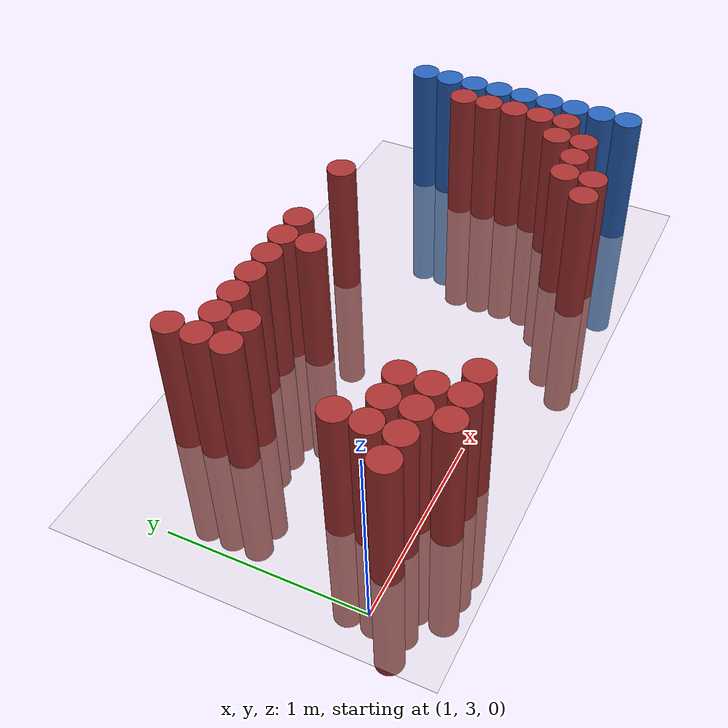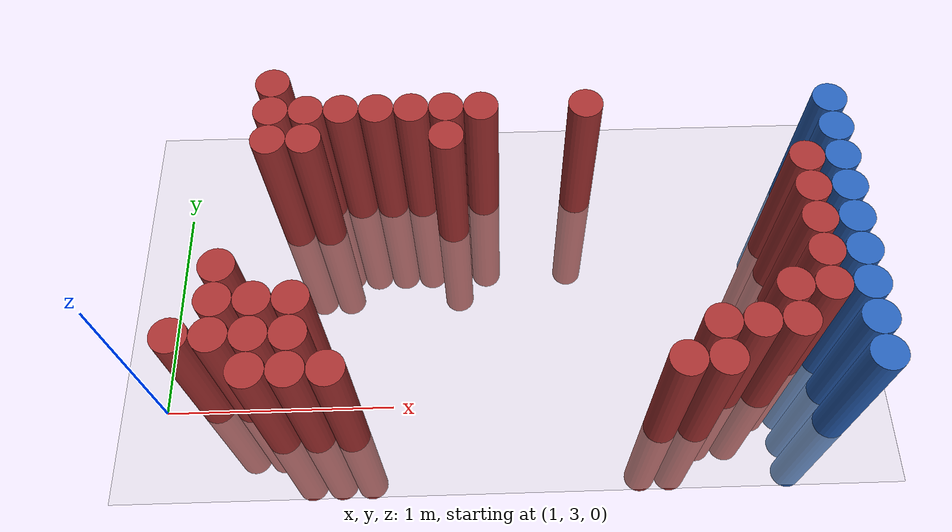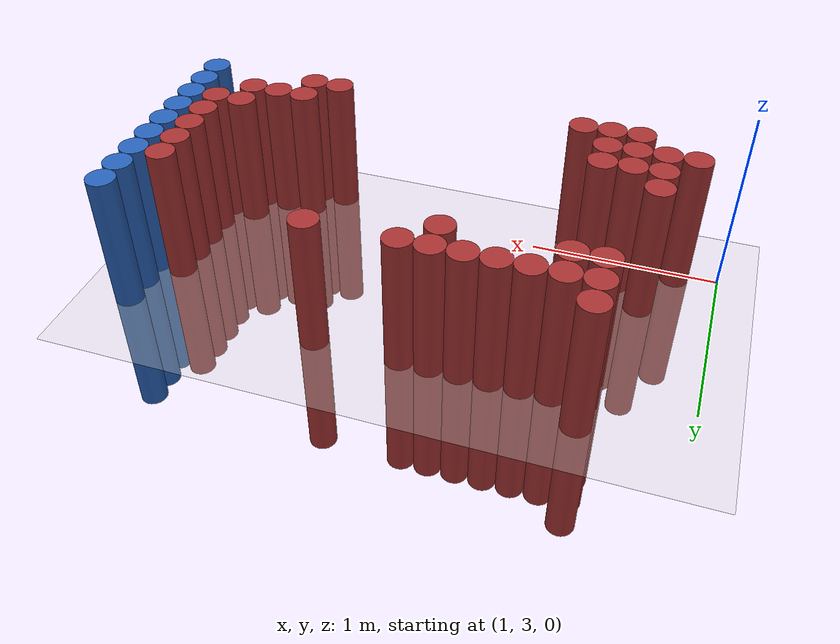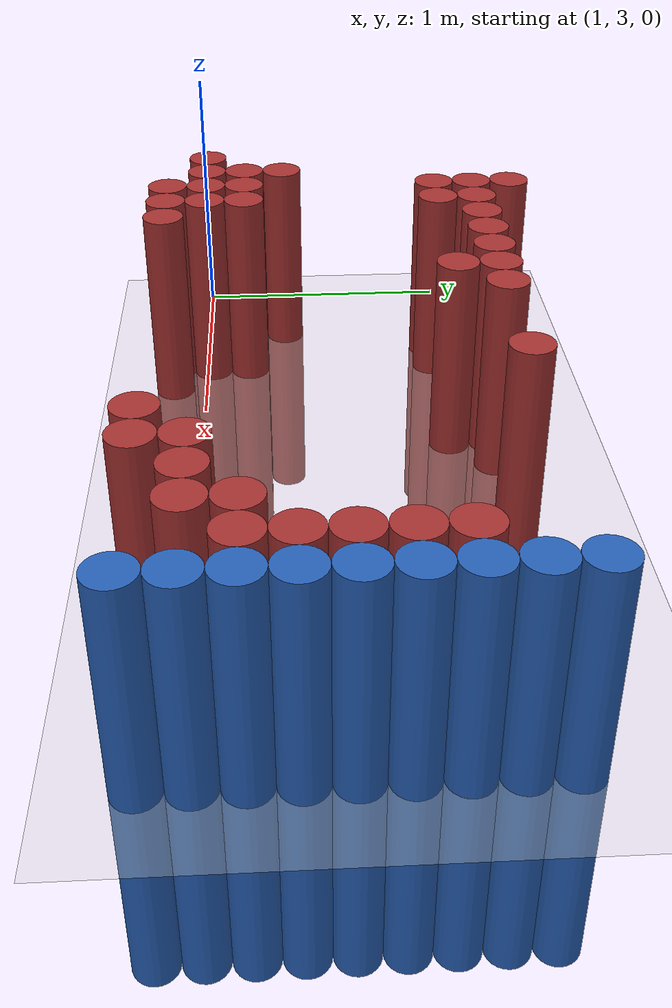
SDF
<sdf version="1.6">
 <world name="default">
  <model name="ground_plane">
   <static>1</static>
   <link name="link">
    <collision name="collision">
     <geometry><plane><normal>0 0 1</normal><size>100 100</size></plane></geometry>
     <surface><friction><ode><mu>100</mu><mu2>50</mu2></ode></friction></surface>
    </collision>
    <visual name="visual">
     <cast_shadows>0</cast_shadows>
     <geometry><plane><normal>0 0 1</normal><size>100 100</size></plane></geometry>
     <material>
      <script><uri>file://media/materials/scripts/gazebo.material</uri><name>Gazebo/Grey</name></script>
     </material>
    </visual>
   </link>
  </model>
  <model name="unit_cylinder_152">
   <static>1</static>
   <pose>3.925000 2.875000 0.000000 0.000000 0.000000 0.000000</pose>
   <link name="link">
    <inertial>
     <mass>1</mass>
     <inertia><ixx>0.145833</ixx><ixy>0</ixy><ixz>0</ixz><iyy>0.145833</iyy><iyz>0</iyz><izz>0.125</izz></inertia>
    </inertial>
    <collision name="collision">
     <geometry><cylinder><radius>0.075000</radius><length>1.5</length></cylinder></geometry>
    </collision>
    <visual name="visual">
     <geometry><cylinder><radius>0.075000</radius><length>1.5</length></cylinder></geometry>
     <material>
      <ambient>0.152000 0.379000 0.720000 1</ambient>
      <diffuse>0.152000 0.379000 0.720000 1</diffuse>
     </material>
     <material>
      <script><name>Gazebo/Grey</name><uri>file://media/materials/scripts/gazebo.material</uri></script>
     </material>
    </visual>
   </link>
  </model>
  <model name="unit_cylinder_154">
   <static>1</static>
   <pose>3.925000 3.025000 0.000000 0.000000 0.000000 0.000000</pose>
   <link name="link">
    <inertial>
     <mass>1</mass>
     <inertia><ixx>0.145833</ixx><ixy>0</ixy><ixz>0</ixz><iyy>0.145833</iyy><iyz>0</iyz><izz>0.125</izz></inertia>
    </inertial>
    <collision name="collision">
     <geometry><cylinder><radius>0.075000</radius><length>1.5</length></cylinder></geometry>
    </collision>
    <visual name="visual">
     <geometry><cylinder><radius>0.075000</radius><length>1.5</length></cylinder></geometry>
     <material>
      <ambient>0.152000 0.379000 0.720000 1</ambient>
      <diffuse>0.152000 0.379000 0.720000 1</diffuse>
     </material>
     <material>
      <script><name>Gazebo/Grey</name><uri>file://media/materials/scripts/gazebo.material</uri></script>
     </material>
    </visual>
   </link>
  </model>
  <model name="unit_cylinder_156">
   <static>1</static>
   <pose>3.925000 3.175000 0.000000 0.000000 0.000000 0.000000</pose>
   <link name="link">
    <inertial>
     <mass>1</mass>
     <inertia><ixx>0.145833</ixx><ixy>0</ixy><ixz>0</ixz><iyy>0.145833</iyy><iyz>0</iyz><izz>0.125</izz></inertia>
    </inertial>
    <collision name="collision">
     <geometry><cylinder><radius>0.075000</radius><length>1.5</length></cylinder></geometry>
    </collision>
    <visual name="visual">
     <geometry><cylinder><radius>0.075000</radius><length>1.5</length></cylinder></geometry>
     <material>
      <ambient>0.152000 0.379000 0.720000 1</ambient>
      <diffuse>0.152000 0.379000 0.720000 1</diffuse>
     </material>
     <material>
      <script><name>Gazebo/Grey</name><uri>file://media/materials/scripts/gazebo.material</uri></script>
     </material>
    </visual>
   </link>
  </model>
  <model name="unit_cylinder_158">
   <static>1</static>
   <pose>3.925000 3.325000 0.000000 0.000000 0.000000 0.000000</pose>
   <link name="link">
    <inertial>
     <mass>1</mass>
     <inertia><ixx>0.145833</ixx><ixy>0</ixy><ixz>0</ixz><iyy>0.145833</iyy><iyz>0</iyz><izz>0.125</izz></inertia>
    </inertial>
    <collision name="collision">
     <geometry><cylinder><radius>0.075000</radius><length>1.5</length></cylinder></geometry>
    </collision>
    <visual name="visual">
     <geometry><cylinder><radius>0.075000</radius><length>1.5</length></cylinder></geometry>
     <material>
      <ambient>0.152000 0.379000 0.720000 1</ambient>
      <diffuse>0.152000 0.379000 0.720000 1</diffuse>
     </material>
     <material>
      <script><name>Gazebo/Grey</name><uri>file://media/materials/scripts/gazebo.material</uri></script>
     </material>
    </visual>
   </link>
  </model>
  <model name="unit_cylinder_160">
   <static>1</static>
   <pose>3.925000 3.475000 0.000000 0.000000 0.000000 0.000000</pose>
   <link name="link">
    <inertial>
     <mass>1</mass>
     <inertia><ixx>0.145833</ixx><ixy>0</ixy><ixz>0</ixz><iyy>0.145833</iyy><iyz>0</iyz><izz>0.125</izz></inertia>
    </inertial>
    <collision name="collision">
     <geometry><cylinder><radius>0.075000</radius><length>1.5</length></cylinder></geometry>
    </collision>
    <visual name="visual">
     <geometry><cylinder><radius>0.075000</radius><length>1.5</length></cylinder></geometry>
     <material>
      <ambient>0.152000 0.379000 0.720000 1</ambient>
      <diffuse>0.152000 0.379000 0.720000 1</diffuse>
     </material>
     <material>
      <script><name>Gazebo/Grey</name><uri>file://media/materials/scripts/gazebo.material</uri></script>
     </material>
    </visual>
   </link>
  </model>
  <model name="unit_cylinder_162">
   <static>1</static>
   <pose>3.925000 3.625000 0.000000 0.000000 0.000000 0.000000</pose>
   <link name="link">
    <inertial>
     <mass>1</mass>
     <inertia><ixx>0.145833</ixx><ixy>0</ixy><ixz>0</ixz><iyy>0.145833</iyy><iyz>0</iyz><izz>0.125</izz></inertia>
    </inertial>
    <collision name="collision">
     <geometry><cylinder><radius>0.075000</radius><length>1.5</length></cylinder></geometry>
    </collision>
    <visual name="visual">
     <geometry><cylinder><radius>0.075000</radius><length>1.5</length></cylinder></geometry>
     <material>
      <ambient>0.152000 0.379000 0.720000 1</ambient>
      <diffuse>0.152000 0.379000 0.720000 1</diffuse>
     </material>
     <material>
      <script><name>Gazebo/Grey</name><uri>file://media/materials/scripts/gazebo.material</uri></script>
     </material>
    </visual>
   </link>
  </model>
  <model name="unit_cylinder_164">
   <static>1</static>
   <pose>3.925000 3.775000 0.000000 0.000000 0.000000 0.000000</pose>
   <link name="link">
    <inertial>
     <mass>1</mass>
     <inertia><ixx>0.145833</ixx><ixy>0</ixy><ixz>0</ixz><iyy>0.145833</iyy><iyz>0</iyz><izz>0.125</izz></inertia>
    </inertial>
    <collision name="collision">
     <geometry><cylinder><radius>0.075000</radius><length>1.5</length></cylinder></geometry>
    </collision>
    <visual name="visual">
     <geometry><cylinder><radius>0.075000</radius><length>1.5</length></cylinder></geometry>
     <material>
      <ambient>0.152000 0.379000 0.720000 1</ambient>
      <diffuse>0.152000 0.379000 0.720000 1</diffuse>
     </material>
     <material>
      <script><name>Gazebo/Grey</name><uri>file://media/materials/scripts/gazebo.material</uri></script>
     </material>
    </visual>
   </link>
  </model>
  <model name="unit_cylinder_166">
   <static>1</static>
   <pose>3.925000 3.925000 0.000000 0.000000 0.000000 0.000000</pose>
   <link name="link">
    <inertial>
     <mass>1</mass>
     <inertia><ixx>0.145833</ixx><ixy>0</ixy><ixz>0</ixz><iyy>0.145833</iyy><iyz>0</iyz><izz>0.125</izz></inertia>
    </inertial>
    <collision name="collision">
     <geometry><cylinder><radius>0.075000</radius><length>1.5</length></cylinder></geometry>
    </collision>
    <visual name="visual">
     <geometry><cylinder><radius>0.075000</radius><length>1.5</length></cylinder></geometry>
     <material>
      <ambient>0.152000 0.379000 0.720000 1</ambient>
      <diffuse>0.152000 0.379000 0.720000 1</diffuse>
     </material>
     <material>
      <script><name>Gazebo/Grey</name><uri>file://media/materials/scripts/gazebo.material</uri></script>
     </material>
    </visual>
   </link>
  </model>
  <model name="unit_cylinder_168">
   <static>1</static>
   <pose>3.925000 4.075000 0.000000 0.000000 0.000000 0.000000</pose>
   <link name="link">
    <inertial>
     <mass>1</mass>
     <inertia><ixx>0.145833</ixx><ixy>0</ixy><ixz>0</ixz><iyy>0.145833</iyy><iyz>0</iyz><izz>0.125</izz></inertia>
    </inertial>
    <collision name="collision">
     <geometry><cylinder><radius>0.075000</radius><length>1.5</length></cylinder></geometry>
    </collision>
    <visual name="visual">
     <geometry><cylinder><radius>0.075000</radius><length>1.5</length></cylinder></geometry>
     <material>
      <ambient>0.152000 0.379000 0.720000 1</ambient>
      <diffuse>0.152000 0.379000 0.720000 1</diffuse>
     </material>
     <material>
      <script><name>Gazebo/Grey</name><uri>file://media/materials/scripts/gazebo.material</uri></script>
     </material>
    </visual>
   </link>
  </model>
  <model name="unit_cylinder_416">
   <static>1</static>
   <pose>1.225000 3.025000 0.000000 0.000000 0.000000 0.000000</pose>
   <link name="link">
    <inertial>
     <mass>1</mass>
     <inertia><ixx>0.145833</ixx><ixy>0</ixy><ixz>0</ixz><iyy>0.145833</iyy><iyz>0</iyz><izz>0.125</izz></inertia>
    </inertial>
    <collision name="collision">
     <geometry><cylinder><radius>0.075000</radius><length>1.5</length></cylinder></geometry>
    </collision>
    <visual name="visual">
     <geometry><cylinder><radius>0.075000</radius><length>1.5</length></cylinder></geometry>
     <material>
      <ambient>0.648000 0.192000 0.192000 1</ambient>
      <diffuse>0.648000 0.192000 0.192000 1</diffuse>
     </material>
     <material>
      <script><name>Gazebo/Grey</name><uri>file://media/materials/scripts/gazebo.material</uri></script>
     </material>
    </visual>
   </link>
  </model>
  <model name="unit_cylinder_421">
   <static>1</static>
   <pose>1.375000 3.025000 0.000000 0.000000 0.000000 0.000000</pose>
   <link name="link">
    <inertial>
     <mass>1</mass>
     <inertia><ixx>0.145833</ixx><ixy>0</ixy><ixz>0</ixz><iyy>0.145833</iyy><iyz>0</iyz><izz>0.125</izz></inertia>
    </inertial>
    <collision name="collision">
     <geometry><cylinder><radius>0.075000</radius><length>1.5</length></cylinder></geometry>
    </collision>
    <visual name="visual">
     <geometry><cylinder><radius>0.075000</radius><length>1.5</length></cylinder></geometry>
     <material>
      <ambient>0.648000 0.192000 0.192000 1</ambient>
      <diffuse>0.648000 0.192000 0.192000 1</diffuse>
     </material>
     <material>
      <script><name>Gazebo/Grey</name><uri>file://media/materials/scripts/gazebo.material</uri></script>
     </material>
    </visual>
   </link>
  </model>
  <model name="unit_cylinder_422">
   <static>1</static>
   <pose>1.375000 3.175000 0.000000 0.000000 0.000000 0.000000</pose>
   <link name="link">
    <inertial>
     <mass>1</mass>
     <inertia><ixx>0.145833</ixx><ixy>0</ixy><ixz>0</ixz><iyy>0.145833</iyy><iyz>0</iyz><izz>0.125</izz></inertia>
    </inertial>
    <collision name="collision">
     <geometry><cylinder><radius>0.075000</radius><length>1.5</length></cylinder></geometry>
    </collision>
    <visual name="visual">
     <geometry><cylinder><radius>0.075000</radius><length>1.5</length></cylinder></geometry>
     <material>
      <ambient>0.648000 0.192000 0.192000 1</ambient>
      <diffuse>0.648000 0.192000 0.192000 1</diffuse>
     </material>
     <material>
      <script><name>Gazebo/Grey</name><uri>file://media/materials/scripts/gazebo.material</uri></script>
     </material>
    </visual>
   </link>
  </model>
  <model name="unit_cylinder_423">
   <static>1</static>
   <pose>1.375000 3.325000 0.000000 0.000000 0.000000 0.000000</pose>
   <link name="link">
    <inertial>
     <mass>1</mass>
     <inertia><ixx>0.145833</ixx><ixy>0</ixy><ixz>0</ixz><iyy>0.145833</iyy><iyz>0</iyz><izz>0.125</izz></inertia>
    </inertial>
    <collision name="collision">
     <geometry><cylinder><radius>0.075000</radius><length>1.5</length></cylinder></geometry>
    </collision>
    <visual name="visual">
     <geometry><cylinder><radius>0.075000</radius><length>1.5</length></cylinder></geometry>
     <material>
      <ambient>0.648000 0.192000 0.192000 1</ambient>
      <diffuse>0.648000 0.192000 0.192000 1</diffuse>
     </material>
     <material>
      <script><name>Gazebo/Grey</name><uri>file://media/materials/scripts/gazebo.material</uri></script>
     </material>
    </visual>
   </link>
  </model>
  <model name="unit_cylinder_428">
   <static>1</static>
   <pose>1.525000 2.875000 0.000000 0.000000 0.000000 0.000000</pose>
   <link name="link">
    <inertial>
     <mass>1</mass>
     <inertia><ixx>0.145833</ixx><ixy>0</ixy><ixz>0</ixz><iyy>0.145833</iyy><iyz>0</iyz><izz>0.125</izz></inertia>
    </inertial>
    <collision name="collision">
     <geometry><cylinder><radius>0.075000</radius><length>1.5</length></cylinder></geometry>
    </collision>
    <visual name="visual">
     <geometry><cylinder><radius>0.075000</radius><length>1.5</length></cylinder></geometry>
     <material>
      <ambient>0.648000 0.192000 0.192000 1</ambient>
      <diffuse>0.648000 0.192000 0.192000 1</diffuse>
     </material>
     <material>
      <script><name>Gazebo/Grey</name><uri>file://media/materials/scripts/gazebo.material</uri></script>
     </material>
    </visual>
   </link>
  </model>
  <model name="unit_cylinder_429">
   <static>1</static>
   <pose>1.525000 3.025000 0.000000 0.000000 0.000000 0.000000</pose>
   <link name="link">
    <inertial>
     <mass>1</mass>
     <inertia><ixx>0.145833</ixx><ixy>0</ixy><ixz>0</ixz><iyy>0.145833</iyy><iyz>0</iyz><izz>0.125</izz></inertia>
    </inertial>
    <collision name="collision">
     <geometry><cylinder><radius>0.075000</radius><length>1.5</length></cylinder></geometry>
    </collision>
    <visual name="visual">
     <geometry><cylinder><radius>0.075000</radius><length>1.5</length></cylinder></geometry>
     <material>
      <ambient>0.648000 0.192000 0.192000 1</ambient>
      <diffuse>0.648000 0.192000 0.192000 1</diffuse>
     </material>
     <material>
      <script><name>Gazebo/Grey</name><uri>file://media/materials/scripts/gazebo.material</uri></script>
     </material>
    </visual>
   </link>
  </model>
  <model name="unit_cylinder_430">
   <static>1</static>
   <pose>1.525000 3.175000 0.000000 0.000000 0.000000 0.000000</pose>
   <link name="link">
    <inertial>
     <mass>1</mass>
     <inertia><ixx>0.145833</ixx><ixy>0</ixy><ixz>0</ixz><iyy>0.145833</iyy><iyz>0</iyz><izz>0.125</izz></inertia>
    </inertial>
    <collision name="collision">
     <geometry><cylinder><radius>0.075000</radius><length>1.5</length></cylinder></geometry>
    </collision>
    <visual name="visual">
     <geometry><cylinder><radius>0.075000</radius><length>1.5</length></cylinder></geometry>
     <material>
      <ambient>0.648000 0.192000 0.192000 1</ambient>
      <diffuse>0.648000 0.192000 0.192000 1</diffuse>
     </material>
     <material>
      <script><name>Gazebo/Grey</name><uri>file://media/materials/scripts/gazebo.material</uri></script>
     </material>
    </visual>
   </link>
  </model>
  <model name="unit_cylinder_431">
   <static>1</static>
   <pose>1.525000 3.925000 0.000000 0.000000 0.000000 0.000000</pose>
   <link name="link">
    <inertial>
     <mass>1</mass>
     <inertia><ixx>0.145833</ixx><ixy>0</ixy><ixz>0</ixz><iyy>0.145833</iyy><iyz>0</iyz><izz>0.125</izz></inertia>
    </inertial>
    <collision name="collision">
     <geometry><cylinder><radius>0.075000</radius><length>1.5</length></cylinder></geometry>
    </collision>
    <visual name="visual">
     <geometry><cylinder><radius>0.075000</radius><length>1.5</length></cylinder></geometry>
     <material>
      <ambient>0.648000 0.192000 0.192000 1</ambient>
      <diffuse>0.648000 0.192000 0.192000 1</diffuse>
     </material>
     <material>
      <script><name>Gazebo/Grey</name><uri>file://media/materials/scripts/gazebo.material</uri></script>
     </material>
    </visual>
   </link>
  </model>
  <model name="unit_cylinder_432">
   <static>1</static>
   <pose>1.525000 4.075000 0.000000 0.000000 0.000000 0.000000</pose>
   <link name="link">
    <inertial>
     <mass>1</mass>
     <inertia><ixx>0.145833</ixx><ixy>0</ixy><ixz>0</ixz><iyy>0.145833</iyy><iyz>0</iyz><izz>0.125</izz></inertia>
    </inertial>
    <collision name="collision">
     <geometry><cylinder><radius>0.075000</radius><length>1.5</length></cylinder></geometry>
    </collision>
    <visual name="visual">
     <geometry><cylinder><radius>0.075000</radius><length>1.5</length></cylinder></geometry>
     <material>
      <ambient>0.648000 0.192000 0.192000 1</ambient>
      <diffuse>0.648000 0.192000 0.192000 1</diffuse>
     </material>
     <material>
      <script><name>Gazebo/Grey</name><uri>file://media/materials/scripts/gazebo.material</uri></script>
     </material>
    </visual>
   </link>
  </model>
  <model name="unit_cylinder_433">
   <static>1</static>
   <pose>1.525000 4.225000 0.000000 0.000000 0.000000 0.000000</pose>
   <link name="link">
    <inertial>
     <mass>1</mass>
     <inertia><ixx>0.145833</ixx><ixy>0</ixy><ixz>0</ixz><iyy>0.145833</iyy><iyz>0</iyz><izz>0.125</izz></inertia>
    </inertial>
    <collision name="collision">
     <geometry><cylinder><radius>0.075000</radius><length>1.5</length></cylinder></geometry>
    </collision>
    <visual name="visual">
     <geometry><cylinder><radius>0.075000</radius><length>1.5</length></cylinder></geometry>
     <material>
      <ambient>0.648000 0.192000 0.192000 1</ambient>
      <diffuse>0.648000 0.192000 0.192000 1</diffuse>
     </material>
     <material>
      <script><name>Gazebo/Grey</name><uri>file://media/materials/scripts/gazebo.material</uri></script>
     </material>
    </visual>
   </link>
  </model>
  <model name="unit_cylinder_438">
   <static>1</static>
   <pose>1.675000 2.875000 0.000000 0.000000 0.000000 0.000000</pose>
   <link name="link">
    <inertial>
     <mass>1</mass>
     <inertia><ixx>0.145833</ixx><ixy>0</ixy><ixz>0</ixz><iyy>0.145833</iyy><iyz>0</iyz><izz>0.125</izz></inertia>
    </inertial>
    <collision name="collision">
     <geometry><cylinder><radius>0.075000</radius><length>1.5</length></cylinder></geometry>
    </collision>
    <visual name="visual">
     <geometry><cylinder><radius>0.075000</radius><length>1.5</length></cylinder></geometry>
     <material>
      <ambient>0.648000 0.192000 0.192000 1</ambient>
      <diffuse>0.648000 0.192000 0.192000 1</diffuse>
     </material>
     <material>
      <script><name>Gazebo/Grey</name><uri>file://media/materials/scripts/gazebo.material</uri></script>
     </material>
    </visual>
   </link>
  </model>
  <model name="unit_cylinder_439">
   <static>1</static>
   <pose>1.675000 3.025000 0.000000 0.000000 0.000000 0.000000</pose>
   <link name="link">
    <inertial>
     <mass>1</mass>
     <inertia><ixx>0.145833</ixx><ixy>0</ixy><ixz>0</ixz><iyy>0.145833</iyy><iyz>0</iyz><izz>0.125</izz></inertia>
    </inertial>
    <collision name="collision">
     <geometry><cylinder><radius>0.075000</radius><length>1.5</length></cylinder></geometry>
    </collision>
    <visual name="visual">
     <geometry><cylinder><radius>0.075000</radius><length>1.5</length></cylinder></geometry>
     <material>
      <ambient>0.648000 0.192000 0.192000 1</ambient>
      <diffuse>0.648000 0.192000 0.192000 1</diffuse>
     </material>
     <material>
      <script><name>Gazebo/Grey</name><uri>file://media/materials/scripts/gazebo.material</uri></script>
     </material>
    </visual>
   </link>
  </model>
  <model name="unit_cylinder_440">
   <static>1</static>
   <pose>1.675000 3.175000 0.000000 0.000000 0.000000 0.000000</pose>
   <link name="link">
    <inertial>
     <mass>1</mass>
     <inertia><ixx>0.145833</ixx><ixy>0</ixy><ixz>0</ixz><iyy>0.145833</iyy><iyz>0</iyz><izz>0.125</izz></inertia>
    </inertial>
    <collision name="collision">
     <geometry><cylinder><radius>0.075000</radius><length>1.5</length></cylinder></geometry>
    </collision>
    <visual name="visual">
     <geometry><cylinder><radius>0.075000</radius><length>1.5</length></cylinder></geometry>
     <material>
      <ambient>0.648000 0.192000 0.192000 1</ambient>
      <diffuse>0.648000 0.192000 0.192000 1</diffuse>
     </material>
     <material>
      <script><name>Gazebo/Grey</name><uri>file://media/materials/scripts/gazebo.material</uri></script>
     </material>
    </visual>
   </link>
  </model>
  <model name="unit_cylinder_441">
   <static>1</static>
   <pose>1.675000 3.925000 0.000000 0.000000 0.000000 0.000000</pose>
   <link name="link">
    <inertial>
     <mass>1</mass>
     <inertia><ixx>0.145833</ixx><ixy>0</ixy><ixz>0</ixz><iyy>0.145833</iyy><iyz>0</iyz><izz>0.125</izz></inertia>
    </inertial>
    <collision name="collision">
     <geometry><cylinder><radius>0.075000</radius><length>1.5</length></cylinder></geometry>
    </collision>
    <visual name="visual">
     <geometry><cylinder><radius>0.075000</radius><length>1.5</length></cylinder></geometry>
     <material>
      <ambient>0.648000 0.192000 0.192000 1</ambient>
      <diffuse>0.648000 0.192000 0.192000 1</diffuse>
     </material>
     <material>
      <script><name>Gazebo/Grey</name><uri>file://media/materials/scripts/gazebo.material</uri></script>
     </material>
    </visual>
   </link>
  </model>
  <model name="unit_cylinder_442">
   <static>1</static>
   <pose>1.675000 4.075000 0.000000 0.000000 0.000000 0.000000</pose>
   <link name="link">
    <inertial>
     <mass>1</mass>
     <inertia><ixx>0.145833</ixx><ixy>0</ixy><ixz>0</ixz><iyy>0.145833</iyy><iyz>0</iyz><izz>0.125</izz></inertia>
    </inertial>
    <collision name="collision">
     <geometry><cylinder><radius>0.075000</radius><length>1.5</length></cylinder></geometry>
    </collision>
    <visual name="visual">
     <geometry><cylinder><radius>0.075000</radius><length>1.5</length></cylinder></geometry>
     <material>
      <ambient>0.648000 0.192000 0.192000 1</ambient>
      <diffuse>0.648000 0.192000 0.192000 1</diffuse>
     </material>
     <material>
      <script><name>Gazebo/Grey</name><uri>file://media/materials/scripts/gazebo.material</uri></script>
     </material>
    </visual>
   </link>
  </model>
  <model name="unit_cylinder_445">
   <static>1</static>
   <pose>1.825000 2.875000 0.000000 0.000000 0.000000 0.000000</pose>
   <link name="link">
    <inertial>
     <mass>1</mass>
     <inertia><ixx>0.145833</ixx><ixy>0</ixy><ixz>0</ixz><iyy>0.145833</iyy><iyz>0</iyz><izz>0.125</izz></inertia>
    </inertial>
    <collision name="collision">
     <geometry><cylinder><radius>0.075000</radius><length>1.5</length></cylinder></geometry>
    </collision>
    <visual name="visual">
     <geometry><cylinder><radius>0.075000</radius><length>1.5</length></cylinder></geometry>
     <material>
      <ambient>0.648000 0.192000 0.192000 1</ambient>
      <diffuse>0.648000 0.192000 0.192000 1</diffuse>
     </material>
     <material>
      <script><name>Gazebo/Grey</name><uri>file://media/materials/scripts/gazebo.material</uri></script>
     </material>
    </visual>
   </link>
  </model>
  <model name="unit_cylinder_446">
   <static>1</static>
   <pose>1.825000 4.075000 0.000000 0.000000 0.000000 0.000000</pose>
   <link name="link">
    <inertial>
     <mass>1</mass>
     <inertia><ixx>0.145833</ixx><ixy>0</ixy><ixz>0</ixz><iyy>0.145833</iyy><iyz>0</iyz><izz>0.125</izz></inertia>
    </inertial>
    <collision name="collision">
     <geometry><cylinder><radius>0.075000</radius><length>1.5</length></cylinder></geometry>
    </collision>
    <visual name="visual">
     <geometry><cylinder><radius>0.075000</radius><length>1.5</length></cylinder></geometry>
     <material>
      <ambient>0.648000 0.192000 0.192000 1</ambient>
      <diffuse>0.648000 0.192000 0.192000 1</diffuse>
     </material>
     <material>
      <script><name>Gazebo/Grey</name><uri>file://media/materials/scripts/gazebo.material</uri></script>
     </material>
    </visual>
   </link>
  </model>
  <model name="unit_cylinder_453">
   <static>1</static>
   <pose>1.975000 4.075000 0.000000 0.000000 0.000000 0.000000</pose>
   <link name="link">
    <inertial>
     <mass>1</mass>
     <inertia><ixx>0.145833</ixx><ixy>0</ixy><ixz>0</ixz><iyy>0.145833</iyy><iyz>0</iyz><izz>0.125</izz></inertia>
    </inertial>
    <collision name="collision">
     <geometry><cylinder><radius>0.075000</radius><length>1.5</length></cylinder></geometry>
    </collision>
    <visual name="visual">
     <geometry><cylinder><radius>0.075000</radius><length>1.5</length></cylinder></geometry>
     <material>
      <ambient>0.648000 0.192000 0.192000 1</ambient>
      <diffuse>0.648000 0.192000 0.192000 1</diffuse>
     </material>
     <material>
      <script><name>Gazebo/Grey</name><uri>file://media/materials/scripts/gazebo.material</uri></script>
     </material>
    </visual>
   </link>
  </model>
  <model name="unit_cylinder_462">
   <static>1</static>
   <pose>2.125000 4.075000 0.000000 0.000000 0.000000 0.000000</pose>
   <link name="link">
    <inertial>
     <mass>1</mass>
     <inertia><ixx>0.145833</ixx><ixy>0</ixy><ixz>0</ixz><iyy>0.145833</iyy><iyz>0</iyz><izz>0.125</izz></inertia>
    </inertial>
    <collision name="collision">
     <geometry><cylinder><radius>0.075000</radius><length>1.5</length></cylinder></geometry>
    </collision>
    <visual name="visual">
     <geometry><cylinder><radius>0.075000</radius><length>1.5</length></cylinder></geometry>
     <material>
      <ambient>0.648000 0.192000 0.192000 1</ambient>
      <diffuse>0.648000 0.192000 0.192000 1</diffuse>
     </material>
     <material>
      <script><name>Gazebo/Grey</name><uri>file://media/materials/scripts/gazebo.material</uri></script>
     </material>
    </visual>
   </link>
  </model>
  <model name="unit_cylinder_469">
   <static>1</static>
   <pose>2.275000 3.925000 0.000000 0.000000 0.000000 0.000000</pose>
   <link name="link">
    <inertial>
     <mass>1</mass>
     <inertia><ixx>0.145833</ixx><ixy>0</ixy><ixz>0</ixz><iyy>0.145833</iyy><iyz>0</iyz><izz>0.125</izz></inertia>
    </inertial>
    <collision name="collision">
     <geometry><cylinder><radius>0.075000</radius><length>1.5</length></cylinder></geometry>
    </collision>
    <visual name="visual">
     <geometry><cylinder><radius>0.075000</radius><length>1.5</length></cylinder></geometry>
     <material>
      <ambient>0.648000 0.192000 0.192000 1</ambient>
      <diffuse>0.648000 0.192000 0.192000 1</diffuse>
     </material>
     <material>
      <script><name>Gazebo/Grey</name><uri>file://media/materials/scripts/gazebo.material</uri></script>
     </material>
    </visual>
   </link>
  </model>
  <model name="unit_cylinder_470">
   <static>1</static>
   <pose>2.275000 4.075000 0.000000 0.000000 0.000000 0.000000</pose>
   <link name="link">
    <inertial>
     <mass>1</mass>
     <inertia><ixx>0.145833</ixx><ixy>0</ixy><ixz>0</ixz><iyy>0.145833</iyy><iyz>0</iyz><izz>0.125</izz></inertia>
    </inertial>
    <collision name="collision">
     <geometry><cylinder><radius>0.075000</radius><length>1.5</length></cylinder></geometry>
    </collision>
    <visual name="visual">
     <geometry><cylinder><radius>0.075000</radius><length>1.5</length></cylinder></geometry>
     <material>
      <ambient>0.648000 0.192000 0.192000 1</ambient>
      <diffuse>0.648000 0.192000 0.192000 1</diffuse>
     </material>
     <material>
      <script><name>Gazebo/Grey</name><uri>file://media/materials/scripts/gazebo.material</uri></script>
     </material>
    </visual>
   </link>
  </model>
  <model name="unit_cylinder_478">
   <static>1</static>
   <pose>2.425000 4.075000 0.000000 0.000000 0.000000 0.000000</pose>
   <link name="link">
    <inertial>
     <mass>1</mass>
     <inertia><ixx>0.145833</ixx><ixy>0</ixy><ixz>0</ixz><iyy>0.145833</iyy><iyz>0</iyz><izz>0.125</izz></inertia>
    </inertial>
    <collision name="collision">
     <geometry><cylinder><radius>0.075000</radius><length>1.5</length></cylinder></geometry>
    </collision>
    <visual name="visual">
     <geometry><cylinder><radius>0.075000</radius><length>1.5</length></cylinder></geometry>
     <material>
      <ambient>0.648000 0.192000 0.192000 1</ambient>
      <diffuse>0.648000 0.192000 0.192000 1</diffuse>
     </material>
     <material>
      <script><name>Gazebo/Grey</name><uri>file://media/materials/scripts/gazebo.material</uri></script>
     </material>
    </visual>
   </link>
  </model>
  <model name="unit_cylinder_498">
   <static>1</static>
   <pose>2.875000 4.075000 0.000000 0.000000 0.000000 0.000000</pose>
   <link name="link">
    <inertial>
     <mass>1</mass>
     <inertia><ixx>0.145833</ixx><ixy>0</ixy><ixz>0</ixz><iyy>0.145833</iyy><iyz>0</iyz><izz>0.125</izz></inertia>
    </inertial>
    <collision name="collision">
     <geometry><cylinder><radius>0.075000</radius><length>1.5</length></cylinder></geometry>
    </collision>
    <visual name="visual">
     <geometry><cylinder><radius>0.075000</radius><length>1.5</length></cylinder></geometry>
     <material>
      <ambient>0.648000 0.192000 0.192000 1</ambient>
      <diffuse>0.648000 0.192000 0.192000 1</diffuse>
     </material>
     <material>
      <script><name>Gazebo/Grey</name><uri>file://media/materials/scripts/gazebo.material</uri></script>
     </material>
    </visual>
   </link>
  </model>
  <model name="unit_cylinder_522">
   <static>1</static>
   <pose>3.175000 2.875000 0.000000 0.000000 0.000000 0.000000</pose>
   <link name="link">
    <inertial>
     <mass>1</mass>
     <inertia><ixx>0.145833</ixx><ixy>0</ixy><ixz>0</ixz><iyy>0.145833</iyy><iyz>0</iyz><izz>0.125</izz></inertia>
    </inertial>
    <collision name="collision">
     <geometry><cylinder><radius>0.075000</radius><length>1.5</length></cylinder></geometry>
    </collision>
    <visual name="visual">
     <geometry><cylinder><radius>0.075000</radius><length>1.5</length></cylinder></geometry>
     <material>
      <ambient>0.648000 0.192000 0.192000 1</ambient>
      <diffuse>0.648000 0.192000 0.192000 1</diffuse>
     </material>
     <material>
      <script><name>Gazebo/Grey</name><uri>file://media/materials/scripts/gazebo.material</uri></script>
     </material>
    </visual>
   </link>
  </model>
  <model name="unit_cylinder_528">
   <static>1</static>
   <pose>3.325000 2.875000 0.000000 0.000000 0.000000 0.000000</pose>
   <link name="link">
    <inertial>
     <mass>1</mass>
     <inertia><ixx>0.145833</ixx><ixy>0</ixy><ixz>0</ixz><iyy>0.145833</iyy><iyz>0</iyz><izz>0.125</izz></inertia>
    </inertial>
    <collision name="collision">
     <geometry><cylinder><radius>0.075000</radius><length>1.5</length></cylinder></geometry>
    </collision>
    <visual name="visual">
     <geometry><cylinder><radius>0.075000</radius><length>1.5</length></cylinder></geometry>
     <material>
      <ambient>0.648000 0.192000 0.192000 1</ambient>
      <diffuse>0.648000 0.192000 0.192000 1</diffuse>
     </material>
     <material>
      <script><name>Gazebo/Grey</name><uri>file://media/materials/scripts/gazebo.material</uri></script>
     </material>
    </visual>
   </link>
  </model>
  <model name="unit_cylinder_529">
   <static>1</static>
   <pose>3.325000 3.025000 0.000000 0.000000 0.000000 0.000000</pose>
   <link name="link">
    <inertial>
     <mass>1</mass>
     <inertia><ixx>0.145833</ixx><ixy>0</ixy><ixz>0</ixz><iyy>0.145833</iyy><iyz>0</iyz><izz>0.125</izz></inertia>
    </inertial>
    <collision name="collision">
     <geometry><cylinder><radius>0.075000</radius><length>1.5</length></cylinder></geometry>
    </collision>
    <visual name="visual">
     <geometry><cylinder><radius>0.075000</radius><length>1.5</length></cylinder></geometry>
     <material>
      <ambient>0.648000 0.192000 0.192000 1</ambient>
      <diffuse>0.648000 0.192000 0.192000 1</diffuse>
     </material>
     <material>
      <script><name>Gazebo/Grey</name><uri>file://media/materials/scripts/gazebo.material</uri></script>
     </material>
    </visual>
   </link>
  </model>
  <model name="unit_cylinder_535">
   <static>1</static>
   <pose>3.475000 3.025000 0.000000 0.000000 0.000000 0.000000</pose>
   <link name="link">
    <inertial>
     <mass>1</mass>
     <inertia><ixx>0.145833</ixx><ixy>0</ixy><ixz>0</ixz><iyy>0.145833</iyy><iyz>0</iyz><izz>0.125</izz></inertia>
    </inertial>
    <collision name="collision">
     <geometry><cylinder><radius>0.075000</radius><length>1.5</length></cylinder></geometry>
    </collision>
    <visual name="visual">
     <geometry><cylinder><radius>0.075000</radius><length>1.5</length></cylinder></geometry>
     <material>
      <ambient>0.648000 0.192000 0.192000 1</ambient>
      <diffuse>0.648000 0.192000 0.192000 1</diffuse>
     </material>
     <material>
      <script><name>Gazebo/Grey</name><uri>file://media/materials/scripts/gazebo.material</uri></script>
     </material>
    </visual>
   </link>
  </model>
  <model name="unit_cylinder_545">
   <static>1</static>
   <pose>3.625000 3.025000 0.000000 0.000000 0.000000 0.000000</pose>
   <link name="link">
    <inertial>
     <mass>1</mass>
     <inertia><ixx>0.145833</ixx><ixy>0</ixy><ixz>0</ixz><iyy>0.145833</iyy><iyz>0</iyz><izz>0.125</izz></inertia>
    </inertial>
    <collision name="collision">
     <geometry><cylinder><radius>0.075000</radius><length>1.5</length></cylinder></geometry>
    </collision>
    <visual name="visual">
     <geometry><cylinder><radius>0.075000</radius><length>1.5</length></cylinder></geometry>
     <material>
      <ambient>0.648000 0.192000 0.192000 1</ambient>
      <diffuse>0.648000 0.192000 0.192000 1</diffuse>
     </material>
     <material>
      <script><name>Gazebo/Grey</name><uri>file://media/materials/scripts/gazebo.material</uri></script>
     </material>
    </visual>
   </link>
  </model>
  <model name="unit_cylinder_546">
   <static>1</static>
   <pose>3.625000 3.175000 0.000000 0.000000 0.000000 0.000000</pose>
   <link name="link">
    <inertial>
     <mass>1</mass>
     <inertia><ixx>0.145833</ixx><ixy>0</ixy><ixz>0</ixz><iyy>0.145833</iyy><iyz>0</iyz><izz>0.125</izz></inertia>
    </inertial>
    <collision name="collision">
     <geometry><cylinder><radius>0.075000</radius><length>1.5</length></cylinder></geometry>
    </collision>
    <visual name="visual">
     <geometry><cylinder><radius>0.075000</radius><length>1.5</length></cylinder></geometry>
     <material>
      <ambient>0.648000 0.192000 0.192000 1</ambient>
      <diffuse>0.648000 0.192000 0.192000 1</diffuse>
     </material>
     <material>
      <script><name>Gazebo/Grey</name><uri>file://media/materials/scripts/gazebo.material</uri></script>
     </material>
    </visual>
   </link>
  </model>
  <model name="unit_cylinder_571">
   <static>1</static>
   <pose>3.775000 3.175000 0.000000 0.000000 0.000000 0.000000</pose>
   <link name="link">
    <inertial>
     <mass>1</mass>
     <inertia><ixx>0.145833</ixx><ixy>0</ixy><ixz>0</ixz><iyy>0.145833</iyy><iyz>0</iyz><izz>0.125</izz></inertia>
    </inertial>
    <collision name="collision">
     <geometry><cylinder><radius>0.075000</radius><length>1.5</length></cylinder></geometry>
    </collision>
    <visual name="visual">
     <geometry><cylinder><radius>0.075000</radius><length>1.5</length></cylinder></geometry>
     <material>
      <ambient>0.648000 0.192000 0.192000 1</ambient>
      <diffuse>0.648000 0.192000 0.192000 1</diffuse>
     </material>
     <material>
      <script><name>Gazebo/Grey</name><uri>file://media/materials/scripts/gazebo.material</uri></script>
     </material>
    </visual>
   </link>
  </model>
  <model name="unit_cylinder_572">
   <static>1</static>
   <pose>3.775000 3.325000 0.000000 0.000000 0.000000 0.000000</pose>
   <link name="link">
    <inertial>
     <mass>1</mass>
     <inertia><ixx>0.145833</ixx><ixy>0</ixy><ixz>0</ixz><iyy>0.145833</iyy><iyz>0</iyz><izz>0.125</izz></inertia>
    </inertial>
    <collision name="collision">
     <geometry><cylinder><radius>0.075000</radius><length>1.5</length></cylinder></geometry>
    </collision>
    <visual name="visual">
     <geometry><cylinder><radius>0.075000</radius><length>1.5</length></cylinder></geometry>
     <material>
      <ambient>0.648000 0.192000 0.192000 1</ambient>
      <diffuse>0.648000 0.192000 0.192000 1</diffuse>
     </material>
     <material>
      <script><name>Gazebo/Grey</name><uri>file://media/materials/scripts/gazebo.material</uri></script>
     </material>
    </visual>
   </link>
  </model>
  <model name="unit_cylinder_573">
   <static>1</static>
   <pose>3.775000 3.475000 0.000000 0.000000 0.000000 0.000000</pose>
   <link name="link">
    <inertial>
     <mass>1</mass>
     <inertia><ixx>0.145833</ixx><ixy>0</ixy><ixz>0</ixz><iyy>0.145833</iyy><iyz>0</iyz><izz>0.125</izz></inertia>
    </inertial>
    <collision name="collision">
     <geometry><cylinder><radius>0.075000</radius><length>1.5</length></cylinder></geometry>
    </collision>
    <visual name="visual">
     <geometry><cylinder><radius>0.075000</radius><length>1.5</length></cylinder></geometry>
     <material>
      <ambient>0.648000 0.192000 0.192000 1</ambient>
      <diffuse>0.648000 0.192000 0.192000 1</diffuse>
     </material>
     <material>
      <script><name>Gazebo/Grey</name><uri>file://media/materials/scripts/gazebo.material</uri></script>
     </material>
    </visual>
   </link>
  </model>
  <model name="unit_cylinder_574">
   <static>1</static>
   <pose>3.775000 3.625000 0.000000 0.000000 0.000000 0.000000</pose>
   <link name="link">
    <inertial>
     <mass>1</mass>
     <inertia><ixx>0.145833</ixx><ixy>0</ixy><ixz>0</ixz><iyy>0.145833</iyy><iyz>0</iyz><izz>0.125</izz></inertia>
    </inertial>
    <collision name="collision">
     <geometry><cylinder><radius>0.075000</radius><length>1.5</length></cylinder></geometry>
    </collision>
    <visual name="visual">
     <geometry><cylinder><radius>0.075000</radius><length>1.5</length></cylinder></geometry>
     <material>
      <ambient>0.648000 0.192000 0.192000 1</ambient>
      <diffuse>0.648000 0.192000 0.192000 1</diffuse>
     </material>
     <material>
      <script><name>Gazebo/Grey</name><uri>file://media/materials/scripts/gazebo.material</uri></script>
     </material>
    </visual>
   </link>
  </model>
  <model name="unit_cylinder_575">
   <static>1</static>
   <pose>3.775000 3.775000 0.000000 0.000000 0.000000 0.000000</pose>
   <link name="link">
    <inertial>
     <mass>1</mass>
     <inertia><ixx>0.145833</ixx><ixy>0</ixy><ixz>0</ixz><iyy>0.145833</iyy><iyz>0</iyz><izz>0.125</izz></inertia>
    </inertial>
    <collision name="collision">
     <geometry><cylinder><radius>0.075000</radius><length>1.5</length></cylinder></geometry>
    </collision>
    <visual name="visual">
     <geometry><cylinder><radius>0.075000</radius><length>1.5</length></cylinder></geometry>
     <material>
      <ambient>0.648000 0.192000 0.192000 1</ambient>
      <diffuse>0.648000 0.192000 0.192000 1</diffuse>
     </material>
     <material>
      <script><name>Gazebo/Grey</name><uri>file://media/materials/scripts/gazebo.material</uri></script>
     </material>
    </visual>
   </link>
  </model>
  <model name="unit_cylinder_613">
   <static>1</static>
   <pose>3.925000 2.875000 0.000000 0.000000 0.000000 0.000000</pose>
   <link name="link">
    <inertial>
     <mass>1</mass>
     <inertia><ixx>0.145833</ixx><ixy>0</ixy><ixz>0</ixz><iyy>0.145833</iyy><iyz>0</iyz><izz>0.125</izz></inertia>
    </inertial>
    <collision name="collision">
     <geometry><cylinder><radius>0.075000</radius><length>1.5</length></cylinder></geometry>
    </collision>
    <visual name="visual">
     <geometry><cylinder><radius>0.075000</radius><length>1.5</length></cylinder></geometry>
     <material>
      <ambient>0.152000 0.379000 0.720000 1</ambient>
      <diffuse>0.152000 0.379000 0.720000 1</diffuse>
     </material>
     <material>
      <script><name>Gazebo/Grey</name><uri>file://media/materials/scripts/gazebo.material</uri></script>
     </material>
    </visual>
   </link>
  </model>
  <model name="unit_cylinder_614">
   <static>1</static>
   <pose>3.925000 3.025000 0.000000 0.000000 0.000000 0.000000</pose>
   <link name="link">
    <inertial>
     <mass>1</mass>
     <inertia><ixx>0.145833</ixx><ixy>0</ixy><ixz>0</ixz><iyy>0.145833</iyy><iyz>0</iyz><izz>0.125</izz></inertia>
    </inertial>
    <collision name="collision">
     <geometry><cylinder><radius>0.075000</radius><length>1.5</length></cylinder></geometry>
    </collision>
    <visual name="visual">
     <geometry><cylinder><radius>0.075000</radius><length>1.5</length></cylinder></geometry>
     <material>
      <ambient>0.152000 0.379000 0.720000 1</ambient>
      <diffuse>0.152000 0.379000 0.720000 1</diffuse>
     </material>
     <material>
      <script><name>Gazebo/Grey</name><uri>file://media/materials/scripts/gazebo.material</uri></script>
     </material>
    </visual>
   </link>
  </model>
  <model name="unit_cylinder_615">
   <static>1</static>
   <pose>3.925000 3.175000 0.000000 0.000000 0.000000 0.000000</pose>
   <link name="link">
    <inertial>
     <mass>1</mass>
     <inertia><ixx>0.145833</ixx><ixy>0</ixy><ixz>0</ixz><iyy>0.145833</iyy><iyz>0</iyz><izz>0.125</izz></inertia>
    </inertial>
    <collision name="collision">
     <geometry><cylinder><radius>0.075000</radius><length>1.5</length></cylinder></geometry>
    </collision>
    <visual name="visual">
     <geometry><cylinder><radius>0.075000</radius><length>1.5</length></cylinder></geometry>
     <material>
      <ambient>0.152000 0.379000 0.720000 1</ambient>
      <diffuse>0.152000 0.379000 0.720000 1</diffuse>
     </material>
     <material>
      <script><name>Gazebo/Grey</name><uri>file://media/materials/scripts/gazebo.material</uri></script>
     </material>
    </visual>
   </link>
  </model>
  <model name="unit_cylinder_616">
   <static>1</static>
   <pose>3.925000 3.325000 0.000000 0.000000 0.000000 0.000000</pose>
   <link name="link">
    <inertial>
     <mass>1</mass>
     <inertia><ixx>0.145833</ixx><ixy>0</ixy><ixz>0</ixz><iyy>0.145833</iyy><iyz>0</iyz><izz>0.125</izz></inertia>
    </inertial>
    <collision name="collision">
     <geometry><cylinder><radius>0.075000</radius><length>1.5</length></cylinder></geometry>
    </collision>
    <visual name="visual">
     <geometry><cylinder><radius>0.075000</radius><length>1.5</length></cylinder></geometry>
     <material>
      <ambient>0.152000 0.379000 0.720000 1</ambient>
      <diffuse>0.152000 0.379000 0.720000 1</diffuse>
     </material>
     <material>
      <script><name>Gazebo/Grey</name><uri>file://media/materials/scripts/gazebo.material</uri></script>
     </material>
    </visual>
   </link>
  </model>
  <model name="unit_cylinder_617">
   <static>1</static>
   <pose>3.925000 3.475000 0.000000 0.000000 0.000000 0.000000</pose>
   <link name="link">
    <inertial>
     <mass>1</mass>
     <inertia><ixx>0.145833</ixx><ixy>0</ixy><ixz>0</ixz><iyy>0.145833</iyy><iyz>0</iyz><izz>0.125</izz></inertia>
    </inertial>
    <collision name="collision">
     <geometry><cylinder><radius>0.075000</radius><length>1.5</length></cylinder></geometry>
    </collision>
    <visual name="visual">
     <geometry><cylinder><radius>0.075000</radius><length>1.5</length></cylinder></geometry>
     <material>
      <ambient>0.152000 0.379000 0.720000 1</ambient>
      <diffuse>0.152000 0.379000 0.720000 1</diffuse>
     </material>
     <material>
      <script><name>Gazebo/Grey</name><uri>file://media/materials/scripts/gazebo.material</uri></script>
     </material>
    </visual>
   </link>
  </model>
  <model name="unit_cylinder_618">
   <static>1</static>
   <pose>3.925000 3.625000 0.000000 0.000000 0.000000 0.000000</pose>
   <link name="link">
    <inertial>
     <mass>1</mass>
     <inertia><ixx>0.145833</ixx><ixy>0</ixy><ixz>0</ixz><iyy>0.145833</iyy><iyz>0</iyz><izz>0.125</izz></inertia>
    </inertial>
    <collision name="collision">
     <geometry><cylinder><radius>0.075000</radius><length>1.5</length></cylinder></geometry>
    </collision>
    <visual name="visual">
     <geometry><cylinder><radius>0.075000</radius><length>1.5</length></cylinder></geometry>
     <material>
      <ambient>0.152000 0.379000 0.720000 1</ambient>
      <diffuse>0.152000 0.379000 0.720000 1</diffuse>
     </material>
     <material>
      <script><name>Gazebo/Grey</name><uri>file://media/materials/scripts/gazebo.material</uri></script>
     </material>
    </visual>
   </link>
  </model>
  <model name="unit_cylinder_619">
   <static>1</static>
   <pose>3.925000 3.775000 0.000000 0.000000 0.000000 0.000000</pose>
   <link name="link">
    <inertial>
     <mass>1</mass>
     <inertia><ixx>0.145833</ixx><ixy>0</ixy><ixz>0</ixz><iyy>0.145833</iyy><iyz>0</iyz><izz>0.125</izz></inertia>
    </inertial>
    <collision name="collision">
     <geometry><cylinder><radius>0.075000</radius><length>1.5</length></cylinder></geometry>
    </collision>
    <visual name="visual">
     <geometry><cylinder><radius>0.075000</radius><length>1.5</length></cylinder></geometry>
     <material>
      <ambient>0.152000 0.379000 0.720000 1</ambient>
      <diffuse>0.152000 0.379000 0.720000 1</diffuse>
     </material>
     <material>
      <script><name>Gazebo/Grey</name><uri>file://media/materials/scripts/gazebo.material</uri></script>
     </material>
    </visual>
   </link>
  </model>
  <model name="unit_cylinder_620">
   <static>1</static>
   <pose>3.925000 3.925000 0.000000 0.000000 0.000000 0.000000</pose>
   <link name="link">
    <inertial>
     <mass>1</mass>
     <inertia><ixx>0.145833</ixx><ixy>0</ixy><ixz>0</ixz><iyy>0.145833</iyy><iyz>0</iyz><izz>0.125</izz></inertia>
    </inertial>
    <collision name="collision">
     <geometry><cylinder><radius>0.075000</radius><length>1.5</length></cylinder></geometry>
    </collision>
    <visual name="visual">
     <geometry><cylinder><radius>0.075000</radius><length>1.5</length></cylinder></geometry>
     <material>
      <ambient>0.152000 0.379000 0.720000 1</ambient>
      <diffuse>0.152000 0.379000 0.720000 1</diffuse>
     </material>
     <material>
      <script><name>Gazebo/Grey</name><uri>file://media/materials/scripts/gazebo.material</uri></script>
     </material>
    </visual>
   </link>
  </model>
  <model name="unit_cylinder_621">
   <static>1</static>
   <pose>3.925000 4.075000 0.000000 0.000000 0.000000 0.000000</pose>
   <link name="link">
    <inertial>
     <mass>1</mass>
     <inertia><ixx>0.145833</ixx><ixy>0</ixy><ixz>0</ixz><iyy>0.145833</iyy><iyz>0</iyz><izz>0.125</izz></inertia>
    </inertial>
    <collision name="collision">
     <geometry><cylinder><radius>0.075000</radius><length>1.5</length></cylinder></geometry>
    </collision>
    <visual name="visual">
     <geometry><cylinder><radius>0.075000</radius><length>1.5</length></cylinder></geometry>
     <material>
      <ambient>0.152000 0.379000 0.720000 1</ambient>
      <diffuse>0.152000 0.379000 0.720000 1</diffuse>
     </material>
     <material>
      <script><name>Gazebo/Grey</name><uri>file://media/materials/scripts/gazebo.material</uri></script>
     </material>
    </visual>
   </link>
  </model>
 </world>
</sdf>
